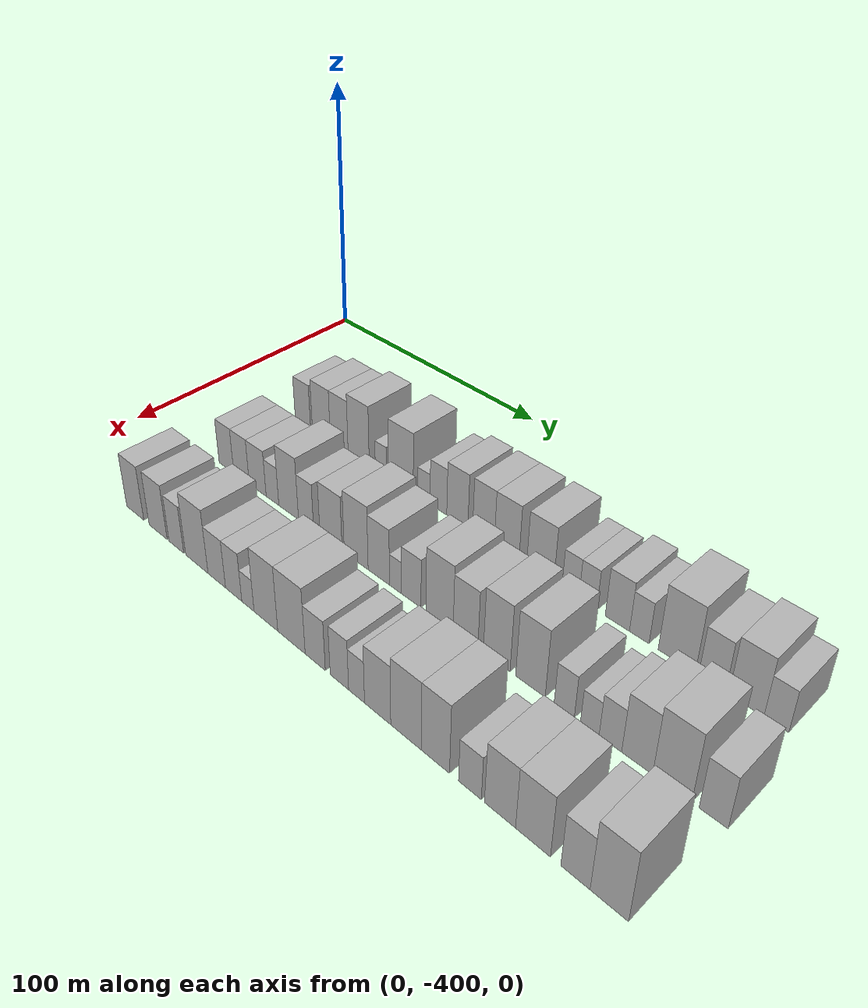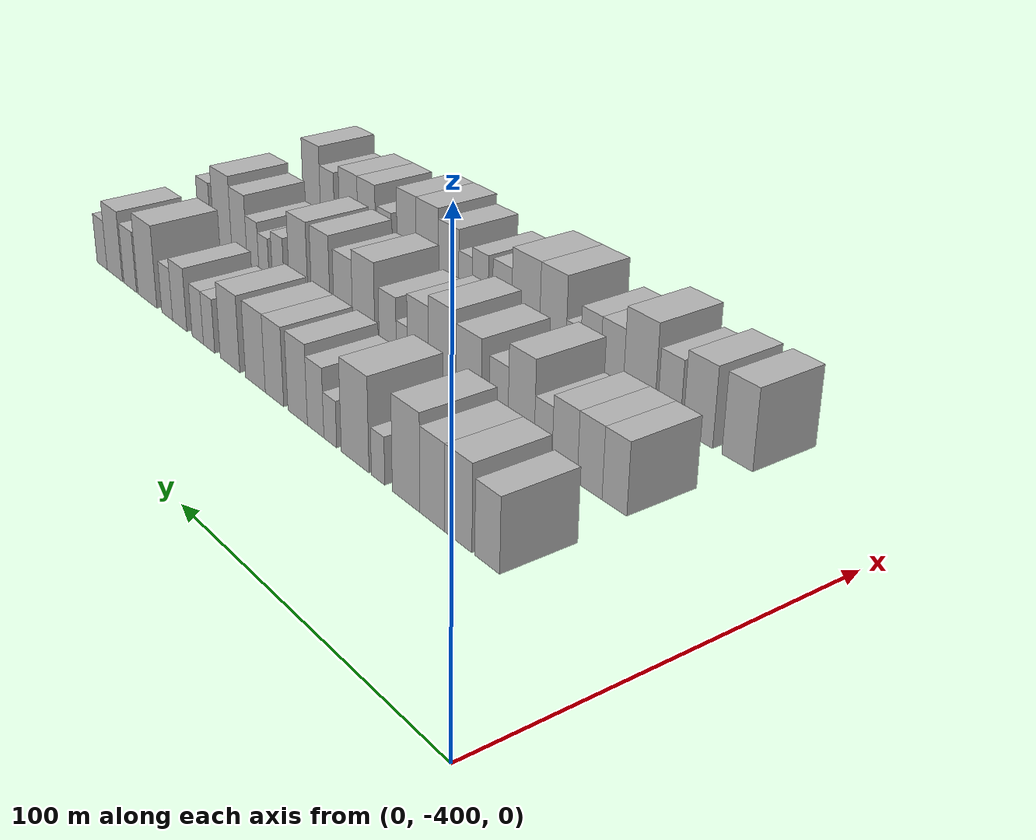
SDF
<sdf version="1.6">
 <world name="default">
  <model name="building_1">
   <static>1</static>
   <pose>50.0000 -355.7815 0 0.000000 0.000000 0.000000</pose>
   <link name="link">
    <pose>0 0 9.00 0 0 0</pose>
    <collision name="collision"><geometry><box><size>20.0000 8.4371 18.0000</size></box></geometry></collision>
    <visual name="visual">
     <cast_shadows>0</cast_shadows>
     <geometry><box><size>20.0000 8.4371 18.0000</size></box></geometry>
     <material>
      <script>
       <uri>model://HANNAS_wall/materials/scripts</uri>
       <uri>model://HANNAS_wall/materials/textures</uri>
       <name>vrc/HANNAS_wall</name>
      </script>
     </material>
    </visual>
   </link>
  </model>
  <model name="building_2">
   <static>1</static>
   <pose>50.0000 -345.7512 0 0.000000 0.000000 0.000000</pose>
   <link name="link">
    <pose>0 0 10.50 0 0 0</pose>
    <collision name="collision"><geometry><box><size>20.0000 9.6234 21.0000</size></box></geometry></collision>
    <visual name="visual">
     <cast_shadows>0</cast_shadows>
     <geometry><box><size>20.0000 9.6234 21.0000</size></box></geometry>
     <material>
      <script>
       <uri>model://HANNAS_wall/materials/scripts</uri>
       <uri>model://HANNAS_wall/materials/textures</uri>
       <name>vrc/HANNAS_wall</name>
      </script>
     </material>
    </visual>
   </link>
  </model>
  <model name="building_3">
   <static>1</static>
   <pose>50.0000 -336.3448 0 0.000000 0.000000 0.000000</pose>
   <link name="link">
    <pose>0 0 10.50 0 0 0</pose>
    <collision name="collision"><geometry><box><size>20.0000 9.1895 21.0000</size></box></geometry></collision>
    <visual name="visual">
     <cast_shadows>0</cast_shadows>
     <geometry><box><size>20.0000 9.1895 21.0000</size></box></geometry>
     <material>
      <script>
       <uri>model://HANNAS_wall/materials/scripts</uri>
       <uri>model://HANNAS_wall/materials/textures</uri>
       <name>vrc/HANNAS_wall</name>
      </script>
     </material>
    </visual>
   </link>
  </model>
  <model name="building_4">
   <static>1</static>
   <pose>50.0000 -326.4318 0 0.000000 0.000000 0.000000</pose>
   <link name="link">
    <pose>0 0 12.00 0 0 0</pose>
    <collision name="collision"><geometry><box><size>20.0000 10.6364 24.0000</size></box></geometry></collision>
    <visual name="visual">
     <cast_shadows>0</cast_shadows>
     <geometry><box><size>20.0000 10.6364 24.0000</size></box></geometry>
     <material>
      <script>
       <uri>model://HANNAS_wall/materials/scripts</uri>
       <uri>model://HANNAS_wall/materials/textures</uri>
       <name>vrc/HANNAS_wall</name>
      </script>
     </material>
    </visual>
   </link>
  </model>
  <model name="building_5">
   <static>1</static>
   <pose>50.0000 -315.4185 0 0.000000 0.000000 0.000000</pose>
   <link name="link">
    <pose>0 0 6.00 0 0 0</pose>
    <collision name="collision"><geometry><box><size>20.0000 5.3902 12.0000</size></box></geometry></collision>
    <visual name="visual">
     <cast_shadows>0</cast_shadows>
     <geometry><box><size>20.0000 5.3902 12.0000</size></box></geometry>
     <material>
      <script>
       <uri>model://HANNAS_wall/materials/scripts</uri>
       <uri>model://HANNAS_wall/materials/textures</uri>
       <name>vrc/HANNAS_wall</name>
      </script>
     </material>
    </visual>
   </link>
  </model>
  <model name="building_6">
   <static>1</static>
   <pose>50.0000 -305.8967 0 0.000000 0.000000 0.000000</pose>
   <link name="link">
    <pose>0 0 12.00 0 0 0</pose>
    <collision name="collision"><geometry><box><size>20.0000 11.6535 24.0000</size></box></geometry></collision>
    <visual name="visual">
     <cast_shadows>0</cast_shadows>
     <geometry><box><size>20.0000 11.6535 24.0000</size></box></geometry>
     <material>
      <script>
       <uri>model://HANNAS_wall/materials/scripts</uri>
       <uri>model://HANNAS_wall/materials/textures</uri>
       <name>vrc/HANNAS_wall</name>
      </script>
     </material>
    </visual>
   </link>
  </model>
  <model name="building_7">
   <static>1</static>
   <pose>50.0000 -295.2478 0 0.000000 0.000000 0.000000</pose>
   <link name="link">
    <pose>0 0 6.00 0 0 0</pose>
    <collision name="collision"><geometry><box><size>20.0000 5.6443 12.0000</size></box></geometry></collision>
    <visual name="visual">
     <cast_shadows>0</cast_shadows>
     <geometry><box><size>20.0000 5.6443 12.0000</size></box></geometry>
     <material>
      <script>
       <uri>model://HANNAS_wall/materials/scripts</uri>
       <uri>model://HANNAS_wall/materials/textures</uri>
       <name>vrc/HANNAS_wall</name>
      </script>
     </material>
    </visual>
   </link>
  </model>
  <model name="building_8">
   <static>1</static>
   <pose>50.0000 -288.7038 0 0.000000 0.000000 0.000000</pose>
   <link name="link">
    <pose>0 0 9.00 0 0 0</pose>
    <collision name="collision"><geometry><box><size>20.0000 7.4436 18.0000</size></box></geometry></collision>
    <visual name="visual">
     <cast_shadows>0</cast_shadows>
     <geometry><box><size>20.0000 7.4436 18.0000</size></box></geometry>
     <material>
      <script>
       <uri>model://HANNAS_wall/materials/scripts</uri>
       <uri>model://HANNAS_wall/materials/textures</uri>
       <name>vrc/HANNAS_wall</name>
      </script>
     </material>
    </visual>
   </link>
  </model>
  <model name="building_9">
   <static>1</static>
   <pose>50.0000 -280.4125 0 0.000000 0.000000 0.000000</pose>
   <link name="link">
    <pose>0 0 10.50 0 0 0</pose>
    <collision name="collision"><geometry><box><size>20.0000 9.1390 21.0000</size></box></geometry></collision>
    <visual name="visual">
     <cast_shadows>0</cast_shadows>
     <geometry><box><size>20.0000 9.1390 21.0000</size></box></geometry>
     <material>
      <script>
       <uri>model://HANNAS_wall/materials/scripts</uri>
       <uri>model://HANNAS_wall/materials/textures</uri>
       <name>vrc/HANNAS_wall</name>
      </script>
     </material>
    </visual>
   </link>
  </model>
  <model name="building_10">
   <static>1</static>
   <pose>50.0000 -269.3442 0 0.000000 0.000000 0.000000</pose>
   <link name="link">
    <pose>0 0 10.50 0 0 0</pose>
    <collision name="collision"><geometry><box><size>20.0000 8.9977 21.0000</size></box></geometry></collision>
    <visual name="visual">
     <cast_shadows>0</cast_shadows>
     <geometry><box><size>20.0000 8.9977 21.0000</size></box></geometry>
     <material>
      <script>
       <uri>model://HANNAS_wall/materials/scripts</uri>
       <uri>model://HANNAS_wall/materials/textures</uri>
       <name>vrc/HANNAS_wall</name>
      </script>
     </material>
    </visual>
   </link>
  </model>
  <model name="building_11">
   <static>1</static>
   <pose>50.0000 -259.8650 0 0.000000 0.000000 0.000000</pose>
   <link name="link">
    <pose>0 0 10.50 0 0 0</pose>
    <collision name="collision"><geometry><box><size>20.0000 9.9606 21.0000</size></box></geometry></collision>
    <visual name="visual">
     <cast_shadows>0</cast_shadows>
     <geometry><box><size>20.0000 9.9606 21.0000</size></box></geometry>
     <material>
      <script>
       <uri>model://HANNAS_wall/materials/scripts</uri>
       <uri>model://HANNAS_wall/materials/textures</uri>
       <name>vrc/HANNAS_wall</name>
      </script>
     </material>
    </visual>
   </link>
  </model>
  <model name="building_12">
   <static>1</static>
   <pose>50.0000 -246.6740 0 0.000000 0.000000 0.000000</pose>
   <link name="link">
    <pose>0 0 10.50 0 0 0</pose>
    <collision name="collision"><geometry><box><size>20.0000 10.4215 21.0000</size></box></geometry></collision>
    <visual name="visual">
     <cast_shadows>0</cast_shadows>
     <geometry><box><size>20.0000 10.4215 21.0000</size></box></geometry>
     <material>
      <script>
       <uri>model://HANNAS_wall/materials/scripts</uri>
       <uri>model://HANNAS_wall/materials/textures</uri>
       <name>vrc/HANNAS_wall</name>
      </script>
     </material>
    </visual>
   </link>
  </model>
  <model name="building_13">
   <static>1</static>
   <pose>50.0000 -235.3233 0 0.000000 0.000000 0.000000</pose>
   <link name="link">
    <pose>0 0 7.50 0 0 0</pose>
    <collision name="collision"><geometry><box><size>20.0000 6.2798 15.0000</size></box></geometry></collision>
    <visual name="visual">
     <cast_shadows>0</cast_shadows>
     <geometry><box><size>20.0000 6.2798 15.0000</size></box></geometry>
     <material>
      <script>
       <uri>model://HANNAS_wall/materials/scripts</uri>
       <uri>model://HANNAS_wall/materials/textures</uri>
       <name>vrc/HANNAS_wall</name>
      </script>
     </material>
    </visual>
   </link>
  </model>
  <model name="building_14">
   <static>1</static>
   <pose>50.0000 -228.9634 0 0.000000 0.000000 0.000000</pose>
   <link name="link">
    <pose>0 0 7.50 0 0 0</pose>
    <collision name="collision"><geometry><box><size>20.0000 6.4400 15.0000</size></box></geometry></collision>
    <visual name="visual">
     <cast_shadows>0</cast_shadows>
     <geometry><box><size>20.0000 6.4400 15.0000</size></box></geometry>
     <material>
      <script>
       <uri>model://HANNAS_wall/materials/scripts</uri>
       <uri>model://HANNAS_wall/materials/textures</uri>
       <name>vrc/HANNAS_wall</name>
      </script>
     </material>
    </visual>
   </link>
  </model>
  <model name="building_15">
   <static>1</static>
   <pose>50.0000 -218.5569 0 0.000000 0.000000 0.000000</pose>
   <link name="link">
    <pose>0 0 9.00 0 0 0</pose>
    <collision name="collision"><geometry><box><size>20.0000 8.3730 18.0000</size></box></geometry></collision>
    <visual name="visual">
     <cast_shadows>0</cast_shadows>
     <geometry><box><size>20.0000 8.3730 18.0000</size></box></geometry>
     <material>
      <script>
       <uri>model://HANNAS_wall/materials/scripts</uri>
       <uri>model://HANNAS_wall/materials/textures</uri>
       <name>vrc/HANNAS_wall</name>
      </script>
     </material>
    </visual>
   </link>
  </model>
  <model name="building_16">
   <static>1</static>
   <pose>50.0000 -211.0873 0 0.000000 0.000000 0.000000</pose>
   <link name="link">
    <pose>0 0 7.50 0 0 0</pose>
    <collision name="collision"><geometry><box><size>20.0000 6.5662 15.0000</size></box></geometry></collision>
    <visual name="visual">
     <cast_shadows>0</cast_shadows>
     <geometry><box><size>20.0000 6.5662 15.0000</size></box></geometry>
     <material>
      <script>
       <uri>model://HANNAS_wall/materials/scripts</uri>
       <uri>model://HANNAS_wall/materials/textures</uri>
       <name>vrc/HANNAS_wall</name>
      </script>
     </material>
    </visual>
   </link>
  </model>
  <model name="building_17">
   <static>1</static>
   <pose>50.0000 -198.8618 0 0.000000 0.000000 0.000000</pose>
   <link name="link">
    <pose>0 0 12.00 0 0 0</pose>
    <collision name="collision"><geometry><box><size>20.0000 11.8849 24.0000</size></box></geometry></collision>
    <visual name="visual">
     <cast_shadows>0</cast_shadows>
     <geometry><box><size>20.0000 11.8849 24.0000</size></box></geometry>
     <material>
      <script>
       <uri>model://HANNAS_wall/materials/scripts</uri>
       <uri>model://HANNAS_wall/materials/textures</uri>
       <name>vrc/HANNAS_wall</name>
      </script>
     </material>
    </visual>
   </link>
  </model>
  <model name="building_18">
   <static>1</static>
   <pose>50.0000 -187.7998 0 0.000000 0.000000 0.000000</pose>
   <link name="link">
    <pose>0 0 9.00 0 0 0</pose>
    <collision name="collision"><geometry><box><size>20.0000 8.2391 18.0000</size></box></geometry></collision>
    <visual name="visual">
     <cast_shadows>0</cast_shadows>
     <geometry><box><size>20.0000 8.2391 18.0000</size></box></geometry>
     <material>
      <script>
       <uri>model://HANNAS_wall/materials/scripts</uri>
       <uri>model://HANNAS_wall/materials/textures</uri>
       <name>vrc/HANNAS_wall</name>
      </script>
     </material>
    </visual>
   </link>
  </model>
  <model name="building_19">
   <static>1</static>
   <pose>50.0000 -177.5316 0 0.000000 0.000000 0.000000</pose>
   <link name="link">
    <pose>0 0 10.50 0 0 0</pose>
    <collision name="collision"><geometry><box><size>20.0000 10.2972 21.0000</size></box></geometry></collision>
    <visual name="visual">
     <cast_shadows>0</cast_shadows>
     <geometry><box><size>20.0000 10.2972 21.0000</size></box></geometry>
     <material>
      <script>
       <uri>model://HANNAS_wall/materials/scripts</uri>
       <uri>model://HANNAS_wall/materials/textures</uri>
       <name>vrc/HANNAS_wall</name>
      </script>
     </material>
    </visual>
   </link>
  </model>
  <model name="building_20">
   <static>1</static>
   <pose>50.0000 -168.8650 0 0.000000 0.000000 0.000000</pose>
   <link name="link">
    <pose>0 0 7.50 0 0 0</pose>
    <collision name="collision"><geometry><box><size>20.0000 7.0361 15.0000</size></box></geometry></collision>
    <visual name="visual">
     <cast_shadows>0</cast_shadows>
     <geometry><box><size>20.0000 7.0361 15.0000</size></box></geometry>
     <material>
      <script>
       <uri>model://HANNAS_wall/materials/scripts</uri>
       <uri>model://HANNAS_wall/materials/textures</uri>
       <name>vrc/HANNAS_wall</name>
      </script>
     </material>
    </visual>
   </link>
  </model>
  <model name="building_80">
   <static>1</static>
   <pose>85.0000 -353.9408 0 0.000000 0.000000 0.000000</pose>
   <link name="link">
    <pose>0 0 9.00 0 0 0</pose>
    <collision name="collision"><geometry><box><size>20.0000 8.1183 18.0000</size></box></geometry></collision>
    <visual name="visual">
     <cast_shadows>0</cast_shadows>
     <geometry><box><size>20.0000 8.1183 18.0000</size></box></geometry>
     <material>
      <script>
       <uri>model://HANNAS_wall/materials/scripts</uri>
       <uri>model://HANNAS_wall/materials/textures</uri>
       <name>vrc/HANNAS_wall</name>
      </script>
     </material>
    </visual>
   </link>
  </model>
  <model name="building_81">
   <static>1</static>
   <pose>85.0000 -345.6753 0 0.000000 0.000000 0.000000</pose>
   <link name="link">
    <pose>0 0 9.00 0 0 0</pose>
    <collision name="collision"><geometry><box><size>20.0000 8.4128 18.0000</size></box></geometry></collision>
    <visual name="visual">
     <cast_shadows>0</cast_shadows>
     <geometry><box><size>20.0000 8.4128 18.0000</size></box></geometry>
     <material>
      <script>
       <uri>model://HANNAS_wall/materials/scripts</uri>
       <uri>model://HANNAS_wall/materials/textures</uri>
       <name>vrc/HANNAS_wall</name>
      </script>
     </material>
    </visual>
   </link>
  </model>
  <model name="building_82">
   <static>1</static>
   <pose>85.0000 -337.0203 0 0.000000 0.000000 0.000000</pose>
   <link name="link">
    <pose>0 0 9.00 0 0 0</pose>
    <collision name="collision"><geometry><box><size>20.0000 8.8972 18.0000</size></box></geometry></collision>
    <visual name="visual">
     <cast_shadows>0</cast_shadows>
     <geometry><box><size>20.0000 8.8972 18.0000</size></box></geometry>
     <material>
      <script>
       <uri>model://HANNAS_wall/materials/scripts</uri>
       <uri>model://HANNAS_wall/materials/textures</uri>
       <name>vrc/HANNAS_wall</name>
      </script>
     </material>
    </visual>
   </link>
  </model>
  <model name="building_83">
   <static>1</static>
   <pose>85.0000 -329.3189 0 0.000000 0.000000 0.000000</pose>
   <link name="link">
    <pose>0 0 7.50 0 0 0</pose>
    <collision name="collision"><geometry><box><size>20.0000 6.5057 15.0000</size></box></geometry></collision>
    <visual name="visual">
     <cast_shadows>0</cast_shadows>
     <geometry><box><size>20.0000 6.5057 15.0000</size></box></geometry>
     <material>
      <script>
       <uri>model://HANNAS_wall/materials/scripts</uri>
       <uri>model://HANNAS_wall/materials/textures</uri>
       <name>vrc/HANNAS_wall</name>
      </script>
     </material>
    </visual>
   </link>
  </model>
  <model name="building_84">
   <static>1</static>
   <pose>85.0000 -321.1531 0 0.000000 0.000000 0.000000</pose>
   <link name="link">
    <pose>0 0 12.00 0 0 0</pose>
    <collision name="collision"><geometry><box><size>20.0000 9.8258 24.0000</size></box></geometry></collision>
    <visual name="visual">
     <cast_shadows>0</cast_shadows>
     <geometry><box><size>20.0000 9.8258 24.0000</size></box></geometry>
     <material>
      <script>
       <uri>model://HANNAS_wall/materials/scripts</uri>
       <uri>model://HANNAS_wall/materials/textures</uri>
       <name>vrc/HANNAS_wall</name>
      </script>
     </material>
    </visual>
   </link>
  </model>
  <model name="building_85">
   <static>1</static>
   <pose>85.0000 -312.5501 0 0.000000 0.000000 0.000000</pose>
   <link name="link">
    <pose>0 0 9.00 0 0 0</pose>
    <collision name="collision"><geometry><box><size>20.0000 7.3802 18.0000</size></box></geometry></collision>
    <visual name="visual">
     <cast_shadows>0</cast_shadows>
     <geometry><box><size>20.0000 7.3802 18.0000</size></box></geometry>
     <material>
      <script>
       <uri>model://HANNAS_wall/materials/scripts</uri>
       <uri>model://HANNAS_wall/materials/textures</uri>
       <name>vrc/HANNAS_wall</name>
      </script>
     </material>
    </visual>
   </link>
  </model>
  <model name="building_86">
   <static>1</static>
   <pose>85.0000 -300.7098 0 0.000000 0.000000 0.000000</pose>
   <link name="link">
    <pose>0 0 10.50 0 0 0</pose>
    <collision name="collision"><geometry><box><size>20.0000 10.3003 21.0000</size></box></geometry></collision>
    <visual name="visual">
     <cast_shadows>0</cast_shadows>
     <geometry><box><size>20.0000 10.3003 21.0000</size></box></geometry>
     <material>
      <script>
       <uri>model://HANNAS_wall/materials/scripts</uri>
       <uri>model://HANNAS_wall/materials/textures</uri>
       <name>vrc/HANNAS_wall</name>
      </script>
     </material>
    </visual>
   </link>
  </model>
  <model name="building_87">
   <static>1</static>
   <pose>85.0000 -289.2352 0 0.000000 0.000000 0.000000</pose>
   <link name="link">
    <pose>0 0 12.00 0 0 0</pose>
    <collision name="collision"><geometry><box><size>20.0000 10.6489 24.0000</size></box></geometry></collision>
    <visual name="visual">
     <cast_shadows>0</cast_shadows>
     <geometry><box><size>20.0000 10.6489 24.0000</size></box></geometry>
     <material>
      <script>
       <uri>model://HANNAS_wall/materials/scripts</uri>
       <uri>model://HANNAS_wall/materials/textures</uri>
       <name>vrc/HANNAS_wall</name>
      </script>
     </material>
    </visual>
   </link>
  </model>
  <model name="building_88">
   <static>1</static>
   <pose>85.0000 -279.3035 0 0.000000 0.000000 0.000000</pose>
   <link name="link">
    <pose>0 0 10.50 0 0 0</pose>
    <collision name="collision"><geometry><box><size>20.0000 9.2144 21.0000</size></box></geometry></collision>
    <visual name="visual">
     <cast_shadows>0</cast_shadows>
     <geometry><box><size>20.0000 9.2144 21.0000</size></box></geometry>
     <material>
      <script>
       <uri>model://HANNAS_wall/materials/scripts</uri>
       <uri>model://HANNAS_wall/materials/textures</uri>
       <name>vrc/HANNAS_wall</name>
      </script>
     </material>
    </visual>
   </link>
  </model>
  <model name="building_89">
   <static>1</static>
   <pose>85.0000 -272.1898 0 0.000000 0.000000 0.000000</pose>
   <link name="link">
    <pose>0 0 6.00 0 0 0</pose>
    <collision name="collision"><geometry><box><size>20.0000 5.0131 12.0000</size></box></geometry></collision>
    <visual name="visual">
     <cast_shadows>0</cast_shadows>
     <geometry><box><size>20.0000 5.0131 12.0000</size></box></geometry>
     <material>
      <script>
       <uri>model://HANNAS_wall/materials/scripts</uri>
       <uri>model://HANNAS_wall/materials/textures</uri>
       <name>vrc/HANNAS_wall</name>
      </script>
     </material>
    </visual>
   </link>
  </model>
  <model name="building_90">
   <static>1</static>
   <pose>85.0000 -265.7035 0 0.000000 0.000000 0.000000</pose>
   <link name="link">
    <pose>0 0 9.00 0 0 0</pose>
    <collision name="collision"><geometry><box><size>20.0000 7.9597 18.0000</size></box></geometry></collision>
    <visual name="visual">
     <cast_shadows>0</cast_shadows>
     <geometry><box><size>20.0000 7.9597 18.0000</size></box></geometry>
     <material>
      <script>
       <uri>model://HANNAS_wall/materials/scripts</uri>
       <uri>model://HANNAS_wall/materials/textures</uri>
       <name>vrc/HANNAS_wall</name>
      </script>
     </material>
    </visual>
   </link>
  </model>
  <model name="building_91">
   <static>1</static>
   <pose>85.0000 -254.3781 0 0.000000 0.000000 0.000000</pose>
   <link name="link">
    <pose>0 0 12.00 0 0 0</pose>
    <collision name="collision"><geometry><box><size>20.0000 10.6911 24.0000</size></box></geometry></collision>
    <visual name="visual">
     <cast_shadows>0</cast_shadows>
     <geometry><box><size>20.0000 10.6911 24.0000</size></box></geometry>
     <material>
      <script>
       <uri>model://HANNAS_wall/materials/scripts</uri>
       <uri>model://HANNAS_wall/materials/textures</uri>
       <name>vrc/HANNAS_wall</name>
      </script>
     </material>
    </visual>
   </link>
  </model>
  <model name="building_92">
   <static>1</static>
   <pose>85.0000 -244.3536 0 0.000000 0.000000 0.000000</pose>
   <link name="link">
    <pose>0 0 10.50 0 0 0</pose>
    <collision name="collision"><geometry><box><size>20.0000 9.3578 21.0000</size></box></geometry></collision>
    <visual name="visual">
     <cast_shadows>0</cast_shadows>
     <geometry><box><size>20.0000 9.3578 21.0000</size></box></geometry>
     <material>
      <script>
       <uri>model://HANNAS_wall/materials/scripts</uri>
       <uri>model://HANNAS_wall/materials/textures</uri>
       <name>vrc/HANNAS_wall</name>
      </script>
     </material>
    </visual>
   </link>
  </model>
  <model name="building_93">
   <static>1</static>
   <pose>85.0000 -232.8557 0 0.000000 0.000000 0.000000</pose>
   <link name="link">
    <pose>0 0 12.00 0 0 0</pose>
    <collision name="collision"><geometry><box><size>20.0000 9.6380 24.0000</size></box></geometry></collision>
    <visual name="visual">
     <cast_shadows>0</cast_shadows>
     <geometry><box><size>20.0000 9.6380 24.0000</size></box></geometry>
     <material>
      <script>
       <uri>model://HANNAS_wall/materials/scripts</uri>
       <uri>model://HANNAS_wall/materials/textures</uri>
       <name>vrc/HANNAS_wall</name>
      </script>
     </material>
    </visual>
   </link>
  </model>
  <model name="building_94">
   <static>1</static>
   <pose>85.0000 -220.9613 0 0.000000 0.000000 0.000000</pose>
   <link name="link">
    <pose>0 0 12.00 0 0 0</pose>
    <collision name="collision"><geometry><box><size>20.0000 10.1509 24.0000</size></box></geometry></collision>
    <visual name="visual">
     <cast_shadows>0</cast_shadows>
     <geometry><box><size>20.0000 10.1509 24.0000</size></box></geometry>
     <material>
      <script>
       <uri>model://HANNAS_wall/materials/scripts</uri>
       <uri>model://HANNAS_wall/materials/textures</uri>
       <name>vrc/HANNAS_wall</name>
      </script>
     </material>
    </visual>
   </link>
  </model>
  <model name="building_95">
   <static>1</static>
   <pose>85.0000 -209.5859 0 0.000000 0.000000 0.000000</pose>
   <link name="link">
    <pose>0 0 7.50 0 0 0</pose>
    <collision name="collision"><geometry><box><size>20.0000 6.6000 15.0000</size></box></geometry></collision>
    <visual name="visual">
     <cast_shadows>0</cast_shadows>
     <geometry><box><size>20.0000 6.6000 15.0000</size></box></geometry>
     <material>
      <script>
       <uri>model://HANNAS_wall/materials/scripts</uri>
       <uri>model://HANNAS_wall/materials/textures</uri>
       <name>vrc/HANNAS_wall</name>
      </script>
     </material>
    </visual>
   </link>
  </model>
  <model name="building_96">
   <static>1</static>
   <pose>85.0000 -201.3395 0 0.000000 0.000000 0.000000</pose>
   <link name="link">
    <pose>0 0 6.00 0 0 0</pose>
    <collision name="collision"><geometry><box><size>20.0000 5.8927 12.0000</size></box></geometry></collision>
    <visual name="visual">
     <cast_shadows>0</cast_shadows>
     <geometry><box><size>20.0000 5.8927 12.0000</size></box></geometry>
     <material>
      <script>
       <uri>model://HANNAS_wall/materials/scripts</uri>
       <uri>model://HANNAS_wall/materials/textures</uri>
       <name>vrc/HANNAS_wall</name>
      </script>
     </material>
    </visual>
   </link>
  </model>
  <model name="building_97">
   <static>1</static>
   <pose>85.0000 -194.9258 0 0.000000 0.000000 0.000000</pose>
   <link name="link">
    <pose>0 0 7.50 0 0 0</pose>
    <collision name="collision"><geometry><box><size>20.0000 6.9347 15.0000</size></box></geometry></collision>
    <visual name="visual">
     <cast_shadows>0</cast_shadows>
     <geometry><box><size>20.0000 6.9347 15.0000</size></box></geometry>
     <material>
      <script>
       <uri>model://HANNAS_wall/materials/scripts</uri>
       <uri>model://HANNAS_wall/materials/textures</uri>
       <name>vrc/HANNAS_wall</name>
      </script>
     </material>
    </visual>
   </link>
  </model>
  <model name="building_98">
   <static>1</static>
   <pose>85.0000 -186.8367 0 0.000000 0.000000 0.000000</pose>
   <link name="link">
    <pose>0 0 10.50 0 0 0</pose>
    <collision name="collision"><geometry><box><size>20.0000 9.2436 21.0000</size></box></geometry></collision>
    <visual name="visual">
     <cast_shadows>0</cast_shadows>
     <geometry><box><size>20.0000 9.2436 21.0000</size></box></geometry>
     <material>
      <script>
       <uri>model://HANNAS_wall/materials/scripts</uri>
       <uri>model://HANNAS_wall/materials/textures</uri>
       <name>vrc/HANNAS_wall</name>
      </script>
     </material>
    </visual>
   </link>
  </model>
  <model name="building_99">
   <static>1</static>
   <pose>85.0000 -176.6480 0 0.000000 0.000000 0.000000</pose>
   <link name="link">
    <pose>0 0 12.00 0 0 0</pose>
    <collision name="collision"><geometry><box><size>20.0000 11.1337 24.0000</size></box></geometry></collision>
    <visual name="visual">
     <cast_shadows>0</cast_shadows>
     <geometry><box><size>20.0000 11.1337 24.0000</size></box></geometry>
     <material>
      <script>
       <uri>model://HANNAS_wall/materials/scripts</uri>
       <uri>model://HANNAS_wall/materials/textures</uri>
       <name>vrc/HANNAS_wall</name>
      </script>
     </material>
    </visual>
   </link>
  </model>
  <model name="building_100">
   <static>1</static>
   <pose>85.0000 -165.1414 0 0.000000 0.000000 0.000000</pose>
   <link name="link">
    <pose>0 0 9.00 0 0 0</pose>
    <collision name="collision"><geometry><box><size>20.0000 7.8794 18.0000</size></box></geometry></collision>
    <visual name="visual">
     <cast_shadows>0</cast_shadows>
     <geometry><box><size>20.0000 7.8794 18.0000</size></box></geometry>
     <material>
      <script>
       <uri>model://HANNAS_wall/materials/scripts</uri>
       <uri>model://HANNAS_wall/materials/textures</uri>
       <name>vrc/HANNAS_wall</name>
      </script>
     </material>
    </visual>
   </link>
  </model>
  <model name="building_162">
   <static>1</static>
   <pose>120.0000 -355.1198 0 0.000000 0.000000 0.000000</pose>
   <link name="link">
    <pose>0 0 10.50 0 0 0</pose>
    <collision name="collision"><geometry><box><size>20.0000 9.7604 21.0000</size></box></geometry></collision>
    <visual name="visual">
     <cast_shadows>0</cast_shadows>
     <geometry><box><size>20.0000 9.7604 21.0000</size></box></geometry>
     <material>
      <script>
       <uri>model://HANNAS_wall/materials/scripts</uri>
       <uri>model://HANNAS_wall/materials/textures</uri>
       <name>vrc/HANNAS_wall</name>
      </script>
     </material>
    </visual>
   </link>
  </model>
  <model name="building_163">
   <static>1</static>
   <pose>120.0000 -342.2891 0 0.000000 0.000000 0.000000</pose>
   <link name="link">
    <pose>0 0 10.50 0 0 0</pose>
    <collision name="collision"><geometry><box><size>20.0000 9.9010 21.0000</size></box></geometry></collision>
    <visual name="visual">
     <cast_shadows>0</cast_shadows>
     <geometry><box><size>20.0000 9.9010 21.0000</size></box></geometry>
     <material>
      <script>
       <uri>model://HANNAS_wall/materials/scripts</uri>
       <uri>model://HANNAS_wall/materials/textures</uri>
       <name>vrc/HANNAS_wall</name>
      </script>
     </material>
    </visual>
   </link>
  </model>
  <model name="building_164">
   <static>1</static>
   <pose>120.0000 -332.4192 0 0.000000 0.000000 0.000000</pose>
   <link name="link">
    <pose>0 0 9.00 0 0 0</pose>
    <collision name="collision"><geometry><box><size>20.0000 7.8390 18.0000</size></box></geometry></collision>
    <visual name="visual">
     <cast_shadows>0</cast_shadows>
     <geometry><box><size>20.0000 7.8390 18.0000</size></box></geometry>
     <material>
      <script>
       <uri>model://HANNAS_wall/materials/scripts</uri>
       <uri>model://HANNAS_wall/materials/textures</uri>
       <name>vrc/HANNAS_wall</name>
      </script>
     </material>
    </visual>
   </link>
  </model>
  <model name="building_165">
   <static>1</static>
   <pose>120.0000 -321.7935 0 0.000000 0.000000 0.000000</pose>
   <link name="link">
    <pose>0 0 12.00 0 0 0</pose>
    <collision name="collision"><geometry><box><size>20.0000 11.4124 24.0000</size></box></geometry></collision>
    <visual name="visual">
     <cast_shadows>0</cast_shadows>
     <geometry><box><size>20.0000 11.4124 24.0000</size></box></geometry>
     <material>
      <script>
       <uri>model://HANNAS_wall/materials/scripts</uri>
       <uri>model://HANNAS_wall/materials/textures</uri>
       <name>vrc/HANNAS_wall</name>
      </script>
     </material>
    </visual>
   </link>
  </model>
  <model name="building_166">
   <static>1</static>
   <pose>120.0000 -311.7719 0 0.000000 0.000000 0.000000</pose>
   <link name="link">
    <pose>0 0 9.00 0 0 0</pose>
    <collision name="collision"><geometry><box><size>20.0000 8.6307 18.0000</size></box></geometry></collision>
    <visual name="visual">
     <cast_shadows>0</cast_shadows>
     <geometry><box><size>20.0000 8.6307 18.0000</size></box></geometry>
     <material>
      <script>
       <uri>model://HANNAS_wall/materials/scripts</uri>
       <uri>model://HANNAS_wall/materials/textures</uri>
       <name>vrc/HANNAS_wall</name>
      </script>
     </material>
    </visual>
   </link>
  </model>
  <model name="building_167">
   <static>1</static>
   <pose>120.0000 -303.5709 0 0.000000 0.000000 0.000000</pose>
   <link name="link">
    <pose>0 0 9.00 0 0 0</pose>
    <collision name="collision"><geometry><box><size>20.0000 7.7714 18.0000</size></box></geometry></collision>
    <visual name="visual">
     <cast_shadows>0</cast_shadows>
     <geometry><box><size>20.0000 7.7714 18.0000</size></box></geometry>
     <material>
      <script>
       <uri>model://HANNAS_wall/materials/scripts</uri>
       <uri>model://HANNAS_wall/materials/textures</uri>
       <name>vrc/HANNAS_wall</name>
      </script>
     </material>
    </visual>
   </link>
  </model>
  <model name="building_168">
   <static>1</static>
   <pose>120.0000 -296.8430 0 0.000000 0.000000 0.000000</pose>
   <link name="link">
    <pose>0 0 6.00 0 0 0</pose>
    <collision name="collision"><geometry><box><size>20.0000 5.6843 12.0000</size></box></geometry></collision>
    <visual name="visual">
     <cast_shadows>0</cast_shadows>
     <geometry><box><size>20.0000 5.6843 12.0000</size></box></geometry>
     <material>
      <script>
       <uri>model://HANNAS_wall/materials/scripts</uri>
       <uri>model://HANNAS_wall/materials/textures</uri>
       <name>vrc/HANNAS_wall</name>
      </script>
     </material>
    </visual>
   </link>
  </model>
  <model name="building_169">
   <static>1</static>
   <pose>120.0000 -288.6375 0 0.000000 0.000000 0.000000</pose>
   <link name="link">
    <pose>0 0 12.00 0 0 0</pose>
    <collision name="collision"><geometry><box><size>20.0000 10.7267 24.0000</size></box></geometry></collision>
    <visual name="visual">
     <cast_shadows>0</cast_shadows>
     <geometry><box><size>20.0000 10.7267 24.0000</size></box></geometry>
     <material>
      <script>
       <uri>model://HANNAS_wall/materials/scripts</uri>
       <uri>model://HANNAS_wall/materials/textures</uri>
       <name>vrc/HANNAS_wall</name>
      </script>
     </material>
    </visual>
   </link>
  </model>
  <model name="building_170">
   <static>1</static>
   <pose>120.0000 -277.3496 0 0.000000 0.000000 0.000000</pose>
   <link name="link">
    <pose>0 0 12.00 0 0 0</pose>
    <collision name="collision"><geometry><box><size>20.0000 11.8492 24.0000</size></box></geometry></collision>
    <visual name="visual">
     <cast_shadows>0</cast_shadows>
     <geometry><box><size>20.0000 11.8492 24.0000</size></box></geometry>
     <material>
      <script>
       <uri>model://HANNAS_wall/materials/scripts</uri>
       <uri>model://HANNAS_wall/materials/textures</uri>
       <name>vrc/HANNAS_wall</name>
      </script>
     </material>
    </visual>
   </link>
  </model>
  <model name="building_171">
   <static>1</static>
   <pose>120.0000 -267.2488 0 0.000000 0.000000 0.000000</pose>
   <link name="link">
    <pose>0 0 9.00 0 0 0</pose>
    <collision name="collision"><geometry><box><size>20.0000 8.3522 18.0000</size></box></geometry></collision>
    <visual name="visual">
     <cast_shadows>0</cast_shadows>
     <geometry><box><size>20.0000 8.3522 18.0000</size></box></geometry>
     <material>
      <script>
       <uri>model://HANNAS_wall/materials/scripts</uri>
       <uri>model://HANNAS_wall/materials/textures</uri>
       <name>vrc/HANNAS_wall</name>
      </script>
     </material>
    </visual>
   </link>
  </model>
  <model name="building_172">
   <static>1</static>
   <pose>120.0000 -257.4066 0 0.000000 0.000000 0.000000</pose>
   <link name="link">
    <pose>0 0 9.00 0 0 0</pose>
    <collision name="collision"><geometry><box><size>20.0000 7.3322 18.0000</size></box></geometry></collision>
    <visual name="visual">
     <cast_shadows>0</cast_shadows>
     <geometry><box><size>20.0000 7.3322 18.0000</size></box></geometry>
     <material>
      <script>
       <uri>model://HANNAS_wall/materials/scripts</uri>
       <uri>model://HANNAS_wall/materials/textures</uri>
       <name>vrc/HANNAS_wall</name>
      </script>
     </material>
    </visual>
   </link>
  </model>
  <model name="building_173">
   <static>1</static>
   <pose>120.0000 -250.6550 0 0.000000 0.000000 0.000000</pose>
   <link name="link">
    <pose>0 0 7.50 0 0 0</pose>
    <collision name="collision"><geometry><box><size>20.0000 6.1712 15.0000</size></box></geometry></collision>
    <visual name="visual">
     <cast_shadows>0</cast_shadows>
     <geometry><box><size>20.0000 6.1712 15.0000</size></box></geometry>
     <material>
      <script>
       <uri>model://HANNAS_wall/materials/scripts</uri>
       <uri>model://HANNAS_wall/materials/textures</uri>
       <name>vrc/HANNAS_wall</name>
      </script>
     </material>
    </visual>
   </link>
  </model>
  <model name="building_174">
   <static>1</static>
   <pose>120.0000 -242.6485 0 0.000000 0.000000 0.000000</pose>
   <link name="link">
    <pose>0 0 10.50 0 0 0</pose>
    <collision name="collision"><geometry><box><size>20.0000 9.8418 21.0000</size></box></geometry></collision>
    <visual name="visual">
     <cast_shadows>0</cast_shadows>
     <geometry><box><size>20.0000 9.8418 21.0000</size></box></geometry>
     <material>
      <script>
       <uri>model://HANNAS_wall/materials/scripts</uri>
       <uri>model://HANNAS_wall/materials/textures</uri>
       <name>vrc/HANNAS_wall</name>
      </script>
     </material>
    </visual>
   </link>
  </model>
  <model name="building_175">
   <static>1</static>
   <pose>120.0000 -232.2748 0 0.000000 0.000000 0.000000</pose>
   <link name="link">
    <pose>0 0 12.00 0 0 0</pose>
    <collision name="collision"><geometry><box><size>20.0000 10.9056 24.0000</size></box></geometry></collision>
    <visual name="visual">
     <cast_shadows>0</cast_shadows>
     <geometry><box><size>20.0000 10.9056 24.0000</size></box></geometry>
     <material>
      <script>
       <uri>model://HANNAS_wall/materials/scripts</uri>
       <uri>model://HANNAS_wall/materials/textures</uri>
       <name>vrc/HANNAS_wall</name>
      </script>
     </material>
    </visual>
   </link>
  </model>
  <model name="building_176">
   <static>1</static>
   <pose>120.0000 -221.9449 0 0.000000 0.000000 0.000000</pose>
   <link name="link">
    <pose>0 0 12.00 0 0 0</pose>
    <collision name="collision"><geometry><box><size>20.0000 9.7543 24.0000</size></box></geometry></collision>
    <visual name="visual">
     <cast_shadows>0</cast_shadows>
     <geometry><box><size>20.0000 9.7543 24.0000</size></box></geometry>
     <material>
      <script>
       <uri>model://HANNAS_wall/materials/scripts</uri>
       <uri>model://HANNAS_wall/materials/textures</uri>
       <name>vrc/HANNAS_wall</name>
      </script>
     </material>
    </visual>
   </link>
  </model>
  <model name="building_177">
   <static>1</static>
   <pose>120.0000 -210.3521 0 0.000000 0.000000 0.000000</pose>
   <link name="link">
    <pose>0 0 7.50 0 0 0</pose>
    <collision name="collision"><geometry><box><size>20.0000 7.4312 15.0000</size></box></geometry></collision>
    <visual name="visual">
     <cast_shadows>0</cast_shadows>
     <geometry><box><size>20.0000 7.4312 15.0000</size></box></geometry>
     <material>
      <script>
       <uri>model://HANNAS_wall/materials/scripts</uri>
       <uri>model://HANNAS_wall/materials/textures</uri>
       <name>vrc/HANNAS_wall</name>
      </script>
     </material>
    </visual>
   </link>
  </model>
  <model name="building_178">
   <static>1</static>
   <pose>120.0000 -200.7853 0 0.000000 0.000000 0.000000</pose>
   <link name="link">
    <pose>0 0 10.50 0 0 0</pose>
    <collision name="collision"><geometry><box><size>20.0000 9.7026 21.0000</size></box></geometry></collision>
    <visual name="visual">
     <cast_shadows>0</cast_shadows>
     <geometry><box><size>20.0000 9.7026 21.0000</size></box></geometry>
     <material>
      <script>
       <uri>model://HANNAS_wall/materials/scripts</uri>
       <uri>model://HANNAS_wall/materials/textures</uri>
       <name>vrc/HANNAS_wall</name>
      </script>
     </material>
    </visual>
   </link>
  </model>
  <model name="building_179">
   <static>1</static>
   <pose>120.0000 -190.7364 0 0.000000 0.000000 0.000000</pose>
   <link name="link">
    <pose>0 0 10.50 0 0 0</pose>
    <collision name="collision"><geometry><box><size>20.0000 10.3951 21.0000</size></box></geometry></collision>
    <visual name="visual">
     <cast_shadows>0</cast_shadows>
     <geometry><box><size>20.0000 10.3951 21.0000</size></box></geometry>
     <material>
      <script>
       <uri>model://HANNAS_wall/materials/scripts</uri>
       <uri>model://HANNAS_wall/materials/textures</uri>
       <name>vrc/HANNAS_wall</name>
      </script>
     </material>
    </visual>
   </link>
  </model>
  <model name="building_180">
   <static>1</static>
   <pose>120.0000 -178.4310 0 0.000000 0.000000 0.000000</pose>
   <link name="link">
    <pose>0 0 9.00 0 0 0</pose>
    <collision name="collision"><geometry><box><size>20.0000 8.2157 18.0000</size></box></geometry></collision>
    <visual name="visual">
     <cast_shadows>0</cast_shadows>
     <geometry><box><size>20.0000 8.2157 18.0000</size></box></geometry>
     <material>
      <script>
       <uri>model://HANNAS_wall/materials/scripts</uri>
       <uri>model://HANNAS_wall/materials/textures</uri>
       <name>vrc/HANNAS_wall</name>
      </script>
     </material>
    </visual>
   </link>
  </model>
  <model name="building_181">
   <static>1</static>
   <pose>120.0000 -169.1450 0 0.000000 0.000000 0.000000</pose>
   <link name="link">
    <pose>0 0 12.00 0 0 0</pose>
    <collision name="collision"><geometry><box><size>20.0000 10.3564 24.0000</size></box></geometry></collision>
    <visual name="visual">
     <cast_shadows>0</cast_shadows>
     <geometry><box><size>20.0000 10.3564 24.0000</size></box></geometry>
     <material>
      <script>
       <uri>model://HANNAS_wall/materials/scripts</uri>
       <uri>model://HANNAS_wall/materials/textures</uri>
       <name>vrc/HANNAS_wall</name>
      </script>
     </material>
    </visual>
   </link>
  </model>
 </world>
</sdf>
